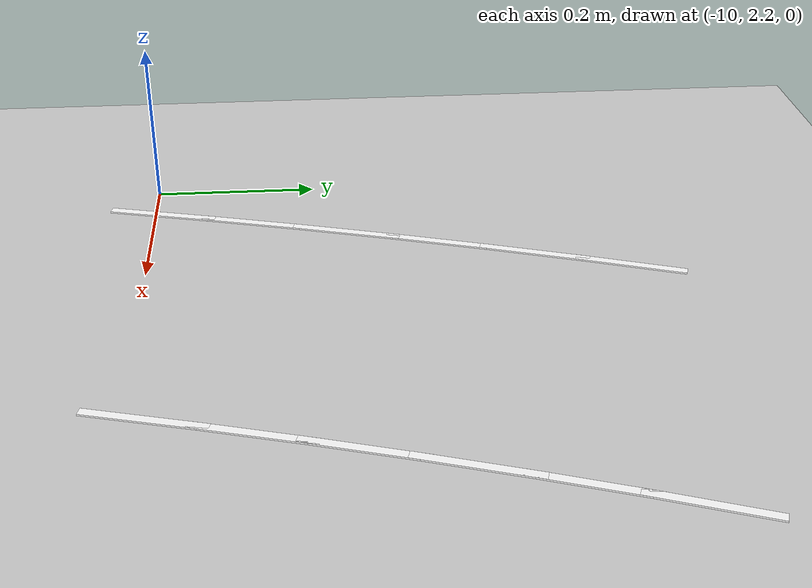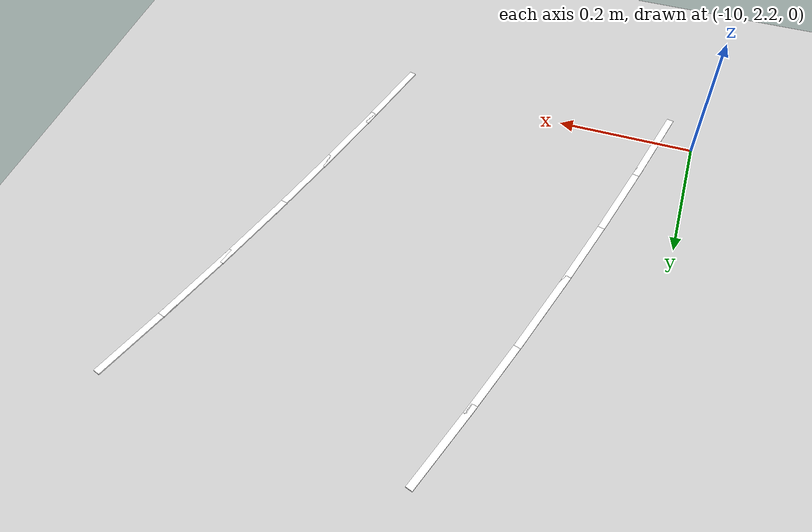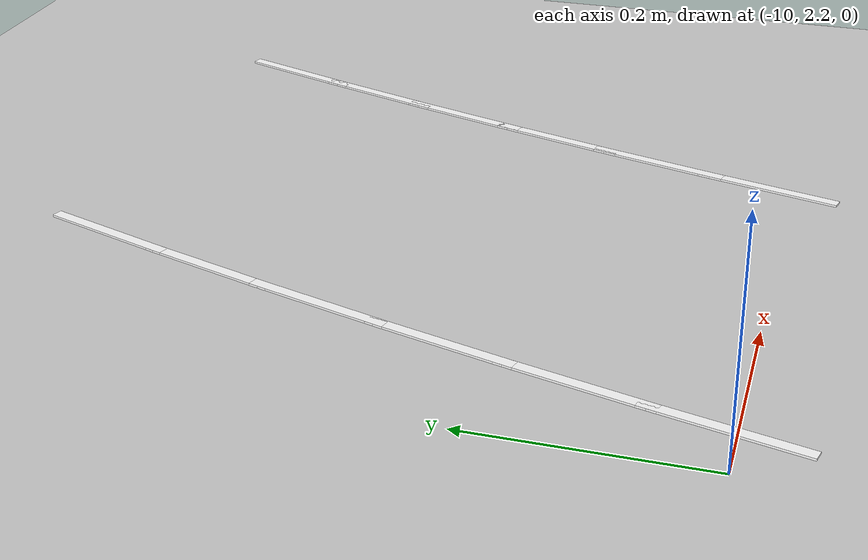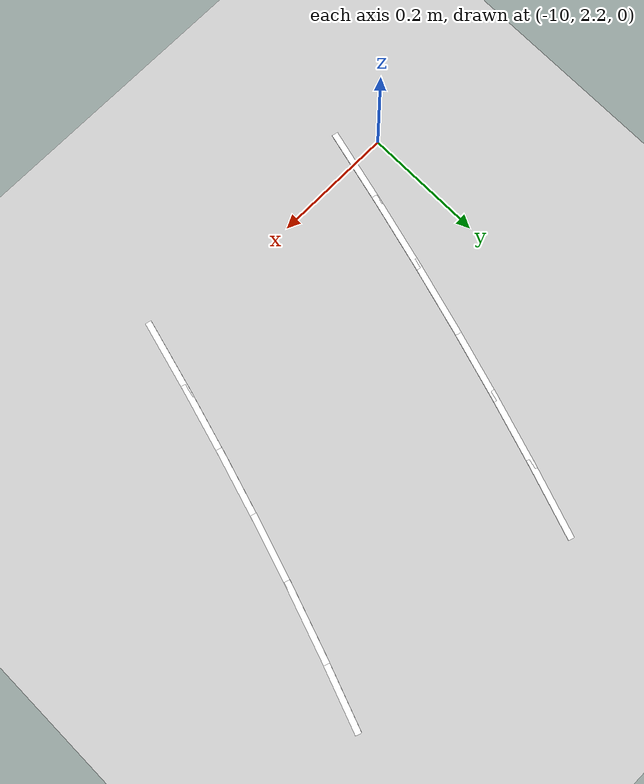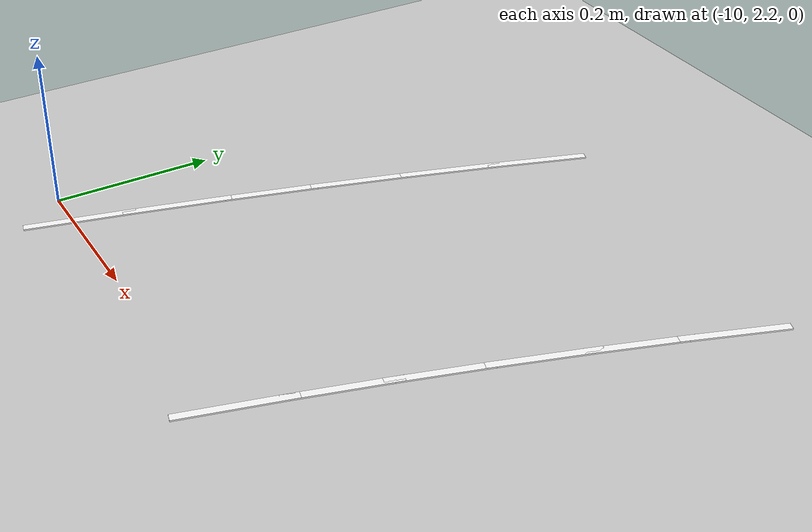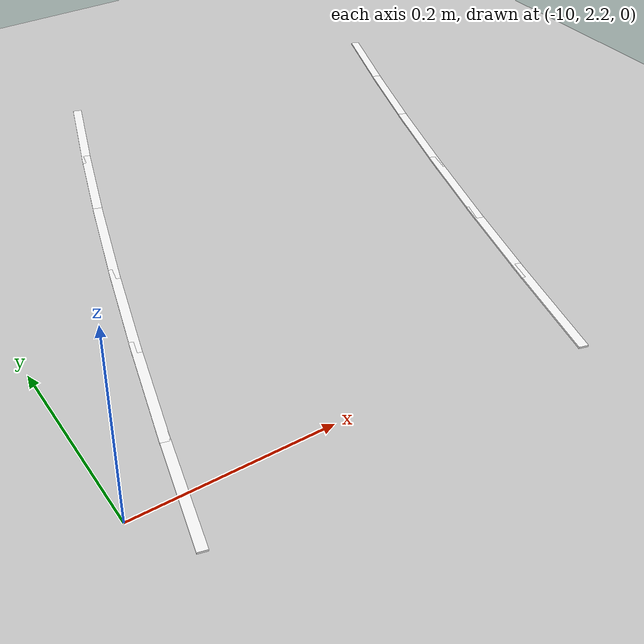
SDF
<sdf version="1.7">
 <world name="default">
  <model name="ground_plane">
   <static>1</static>
   <link name="link">
    <collision name="collision">
     <geometry><plane><normal>0 0 1</normal><size>100 100</size></plane></geometry>
     <surface>
      <contact><collide_bitmask>65535</collide_bitmask></contact>
      <friction><ode><mu>100</mu><mu2>50</mu2></ode></friction>
     </surface>
    </collision>
    <visual name="visual">
     <cast_shadows>0</cast_shadows>
     <geometry><plane><normal>0 0 1</normal><size>100 100</size></plane></geometry>
     <material>
      <script><uri>file://media/materials/scripts/gazebo.material</uri><name>Gazebo/Grey</name></script>
     </material>
    </visual>
   </link>
  </model>
  <model name="lane_line_left_350">
   <static>1</static>
   <link name="link">
    <pose>0 0 -0.004 0 -0 0</pose>
    <visual name="visual">
     <geometry><box><size>0.1305 0.01 0.01</size></box></geometry>
     <material><ambient>1 1 1 1</ambient><diffuse>1 1 1 1</diffuse></material>
    </visual>
    <collision name="collision"><geometry><box><size>0.1305 0.01 0.01</size></box></geometry></collision>
   </link>
   <pose>-9.36759 2.74798 0 0 0 -1.91325</pose>
  </model>
  <model name="lane_line_left_351">
   <static>1</static>
   <link name="link">
    <pose>0 0 -0.004 0 -0 0</pose>
    <visual name="visual">
     <geometry><box><size>0.1316 0.01 0.01</size></box></geometry>
     <material><ambient>1 1 1 1</ambient><diffuse>1 1 1 1</diffuse></material>
    </visual>
    <collision name="collision"><geometry><box><size>0.1316 0.01 0.01</size></box></geometry></collision>
   </link>
   <pose>-9.40275 2.64646 0 0 0 -1.89517</pose>
  </model>
  <model name="lane_line_right_351">
   <static>1</static>
   <link name="link">
    <pose>0 0 -0.004 0 -0 0</pose>
    <visual name="visual">
     <geometry><box><size>0.1316 0.01 0.01</size></box></geometry>
     <material><ambient>1 1 1 1</ambient><diffuse>1 1 1 1</diffuse></material>
    </visual>
    <collision name="collision"><geometry><box><size>0.1316 0.01 0.01</size></box></geometry></collision>
   </link>
   <pose>-9.78189 2.77395 0 0 0 -1.89517</pose>
  </model>
  <model name="lane_line_left_352">
   <static>1</static>
   <link name="link">
    <pose>0 0 -0.004 0 -0 0</pose>
    <visual name="visual">
     <geometry><box><size>0.1328 0.01 0.01</size></box></geometry>
     <material><ambient>1 1 1 1</ambient><diffuse>1 1 1 1</diffuse></material>
    </visual>
    <collision name="collision"><geometry><box><size>0.1328 0.01 0.01</size></box></geometry></collision>
   </link>
   <pose>-9.43647 2.54316 0 0 0 -1.8776</pose>
  </model>
  <model name="lane_line_right_352">
   <static>1</static>
   <link name="link">
    <pose>0 0 -0.004 0 -0 0</pose>
    <visual name="visual">
     <geometry><box><size>0.1328 0.01 0.01</size></box></geometry>
     <material><ambient>1 1 1 1</ambient><diffuse>1 1 1 1</diffuse></material>
    </visual>
    <collision name="collision"><geometry><box><size>0.1328 0.01 0.01</size></box></geometry></collision>
   </link>
   <pose>-9.81779 2.66396 0 0 0 -1.8776</pose>
  </model>
  <model name="lane_line_left_353">
   <static>1</static>
   <link name="link">
    <pose>0 0 -0.004 0 -0 0</pose>
    <visual name="visual">
     <geometry><box><size>0.1339 0.01 0.01</size></box></geometry>
     <material><ambient>1 1 1 1</ambient><diffuse>1 1 1 1</diffuse></material>
    </visual>
    <collision name="collision"><geometry><box><size>0.1339 0.01 0.01</size></box></geometry></collision>
   </link>
   <pose>-9.46876 2.43812 0 0 0 -1.86051</pose>
  </model>
  <model name="lane_line_right_353">
   <static>1</static>
   <link name="link">
    <pose>0 0 -0.004 0 -0 0</pose>
    <visual name="visual">
     <geometry><box><size>0.1339 0.01 0.01</size></box></geometry>
     <material><ambient>1 1 1 1</ambient><diffuse>1 1 1 1</diffuse></material>
    </visual>
    <collision name="collision"><geometry><box><size>0.1339 0.01 0.01</size></box></geometry></collision>
   </link>
   <pose>-9.85209 2.55239 0 0 0 -1.86051</pose>
  </model>
  <model name="lane_line_left_354">
   <static>1</static>
   <link name="link">
    <pose>0 0 -0.004 0 -0 0</pose>
    <visual name="visual">
     <geometry><box><size>0.1349 0.01 0.01</size></box></geometry>
     <material><ambient>1 1 1 1</ambient><diffuse>1 1 1 1</diffuse></material>
    </visual>
    <collision name="collision"><geometry><box><size>0.1349 0.01 0.01</size></box></geometry></collision>
   </link>
   <pose>-9.49959 2.33144 0 0 0 -1.84387</pose>
  </model>
  <model name="lane_line_right_354">
   <static>1</static>
   <link name="link">
    <pose>0 0 -0.004 0 -0 0</pose>
    <visual name="visual">
     <geometry><box><size>0.1349 0.01 0.01</size></box></geometry>
     <material><ambient>1 1 1 1</ambient><diffuse>1 1 1 1</diffuse></material>
    </visual>
    <collision name="collision"><geometry><box><size>0.1349 0.01 0.01</size></box></geometry></collision>
   </link>
   <pose>-9.88477 2.43931 0 0 0 -1.84387</pose>
  </model>
  <model name="lane_line_left_355">
   <static>1</static>
   <link name="link">
    <pose>0 0 -0.004 0 -0 0</pose>
    <visual name="visual">
     <geometry><box><size>0.1359 0.01 0.01</size></box></geometry>
     <material><ambient>1 1 1 1</ambient><diffuse>1 1 1 1</diffuse></material>
    </visual>
    <collision name="collision"><geometry><box><size>0.1359 0.01 0.01</size></box></geometry></collision>
   </link>
   <pose>-9.52896 2.22317 0 0 0 -1.82764</pose>
  </model>
  <model name="lane_line_right_355">
   <static>1</static>
   <link name="link">
    <pose>0 0 -0.004 0 -0 0</pose>
    <visual name="visual">
     <geometry><box><size>0.1359 0.01 0.01</size></box></geometry>
     <material><ambient>1 1 1 1</ambient><diffuse>1 1 1 1</diffuse></material>
    </visual>
    <collision name="collision"><geometry><box><size>0.1359 0.01 0.01</size></box></geometry></collision>
   </link>
   <pose>-9.91584 2.32478 0 0 0 -1.82764</pose>
  </model>
  <model name="lane_line_right_356">
   <static>1</static>
   <link name="link">
    <pose>0 0 -0.004 0 -0 0</pose>
    <visual name="visual">
     <geometry><box><size>0.1369 0.01 0.01</size></box></geometry>
     <material><ambient>1 1 1 1</ambient><diffuse>1 1 1 1</diffuse></material>
    </visual>
    <collision name="collision"><geometry><box><size>0.1369 0.01 0.01</size></box></geometry></collision>
   </link>
   <pose>-9.9453 2.20888 0 0 0 -1.81182</pose>
  </model>
 </world>
</sdf>
